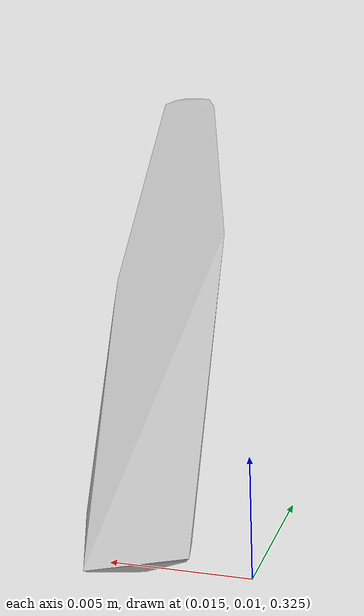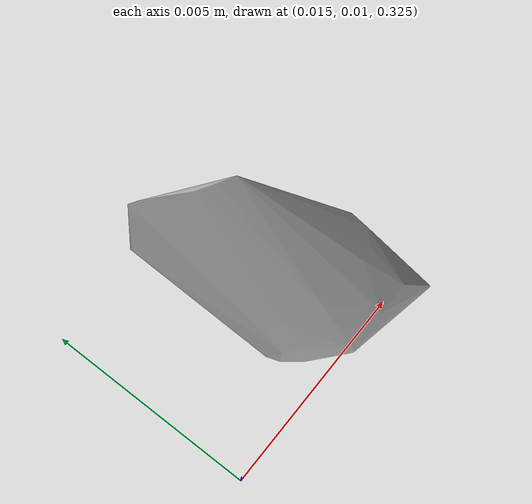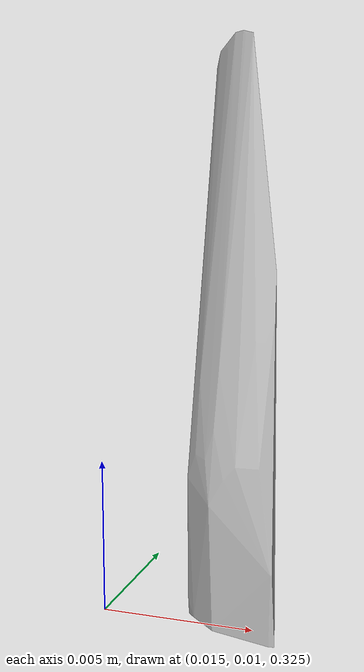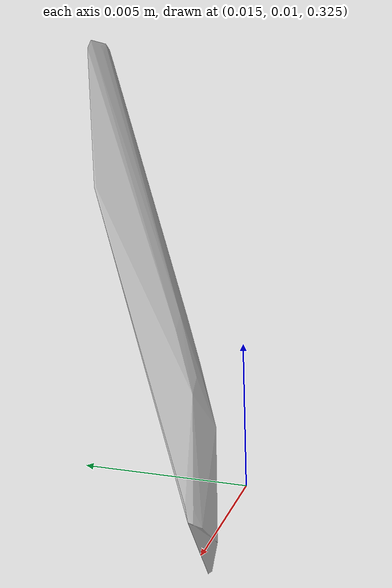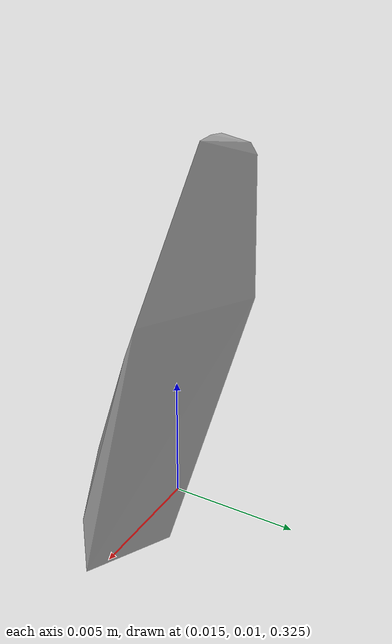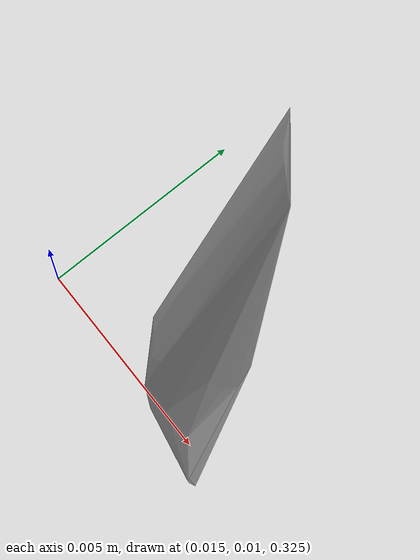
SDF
<?xml version="1.0"?>
<sdf version="1.7">
  <model name="vascular_partexport032">
    <link name="vascular_partexport032_body">
      <visual name="vascular_partexport032_visual">
        <geometry>
          <mesh>
            <uri>vascular_partexport032.obj</uri>
          </mesh>
        </geometry>
      </visual>
      <collision name="vascular_partexport032_collision">
        <geometry>
          <mesh>
            <uri>vascular_partexport032.obj</uri>
          </mesh>
        </geometry>
      </collision>
    </link>
    <frame name="vascular_partexport032_center">
      <pose relative_to="vascular_partexport032_body">0 0 0 0 0 0</pose>
    </frame>
  </model>
</sdf>
